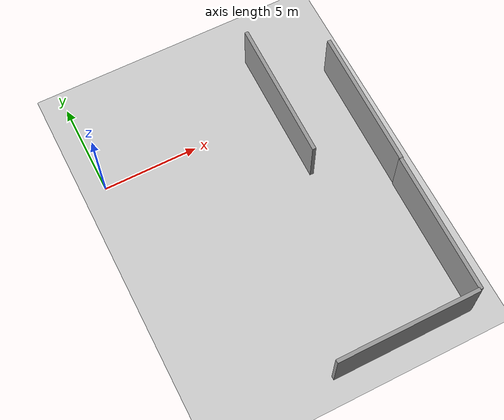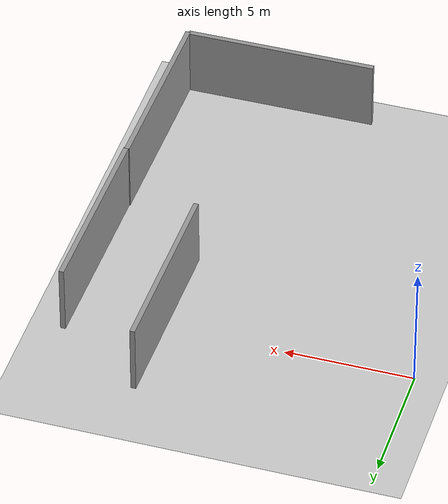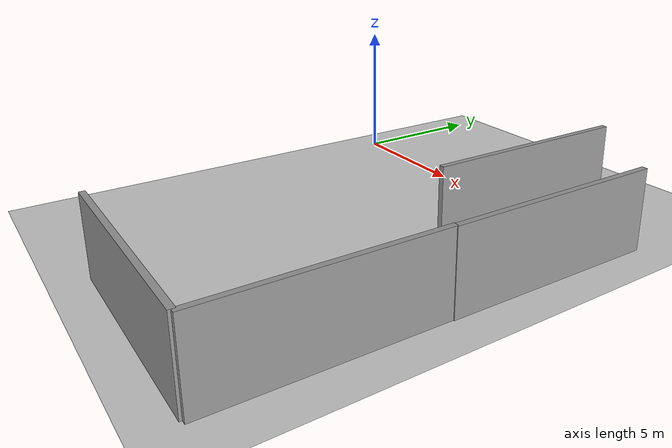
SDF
<sdf version="1.7">
 <world name="default">
  <model name="ground_plane">
   <static>1</static>
   <link name="link">
    <collision name="collision">
     <geometry><plane><normal>0 0 1</normal><size>100 100</size></plane></geometry>
     <surface><friction><ode><mu>100</mu><mu2>50</mu2></ode></friction></surface>
    </collision>
    <visual name="visual">
     <cast_shadows>0</cast_shadows>
     <geometry><plane><normal>0 0 1</normal><size>100 100</size></plane></geometry>
     <material>
      <script><uri>file://media/materials/scripts/gazebo.material</uri><name>Gazebo/Grey</name></script>
     </material>
    </visual>
   </link>
  </model>
  <model name="grey_wall_1">
   <static>1</static>
   <link name="link">
    <pose>0 0 1.4 0 -0 0</pose>
    <collision name="collision"><geometry><box><size>7.5 0.2 2.8</size></box></geometry></collision>
    <visual name="visual">
     <cast_shadows>0</cast_shadows>
     <geometry><box><size>7.5 0.2 2.8</size></box></geometry>
     <material>
      <script>
       <uri>model://grey_wall/materials/scripts</uri>
       <uri>model://grey_wall/materials/textures</uri>
       <name>vrc/grey_wall</name>
      </script>
     </material>
    </visual>
   </link>
   <pose>9.26039 -13.7917 0 0 -0 0</pose>
  </model>
  <model name="grey_wall_2">
   <static>1</static>
   <link name="link">
    <pose>0 0 1.4 0 -0 0</pose>
    <collision name="collision"><geometry><box><size>7.5 0.2 2.8</size></box></geometry></collision>
    <visual name="visual">
     <cast_shadows>0</cast_shadows>
     <geometry><box><size>7.5 0.2 2.8</size></box></geometry>
     <material>
      <script>
       <uri>model://grey_wall/materials/scripts</uri>
       <uri>model://grey_wall/materials/textures</uri>
       <name>vrc/grey_wall</name>
      </script>
     </material>
    </visual>
   </link>
   <pose>13.0974 -10.0629 0 0 -0 1.5595</pose>
  </model>
  <model name="grey_wall_2_clone">
   <static>1</static>
   <link name="link">
    <pose>0 0 1.4 0 -0 0</pose>
    <collision name="collision"><geometry><box><size>7.5 0.2 2.8</size></box></geometry></collision>
    <visual name="visual">
     <cast_shadows>0</cast_shadows>
     <geometry><box><size>7.5 0.2 2.8</size></box></geometry>
     <material>
      <script>
       <uri>model://grey_wall/materials/scripts</uri>
       <uri>model://grey_wall/materials/textures</uri>
       <name>vrc/grey_wall</name>
      </script>
     </material>
    </visual>
   </link>
   <pose>13.2137 -2.61377 0 0 -0 1.5595</pose>
  </model>
  <model name="grey_wall_2_clone_4_clone_2_clone_3">
   <static>1</static>
   <link name="link">
    <pose>0 0 1.4 0 -0 0</pose>
    <collision name="collision"><geometry><box><size>7.5 0.2 2.8</size></box></geometry></collision>
    <visual name="visual">
     <cast_shadows>0</cast_shadows>
     <geometry><box><size>7.5 0.2 2.8</size></box></geometry>
     <material>
      <script>
       <uri>model://grey_wall/materials/scripts</uri>
       <uri>model://grey_wall/materials/textures</uri>
       <name>vrc/grey_wall</name>
      </script>
     </material>
    </visual>
   </link>
   <pose>9.69559 -0.254614 0 0 -0 1.5595</pose>
  </model>
 </world>
</sdf>
